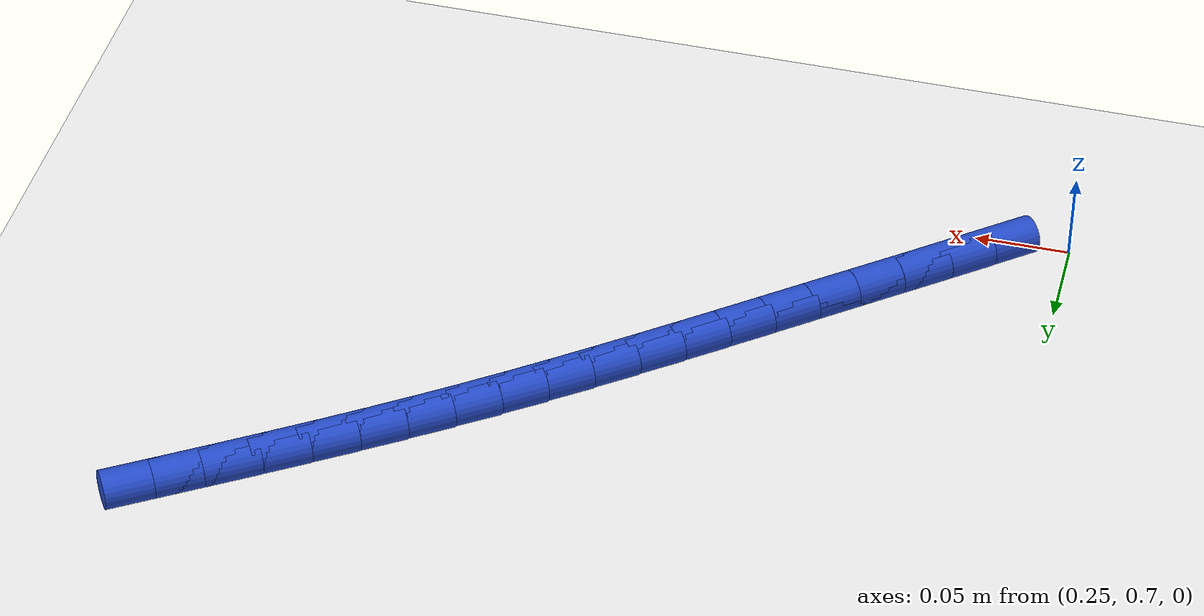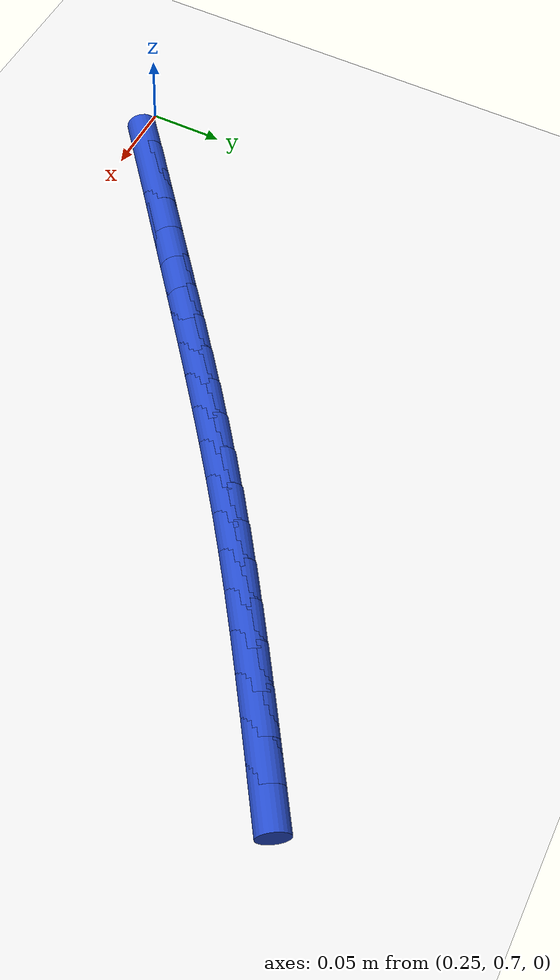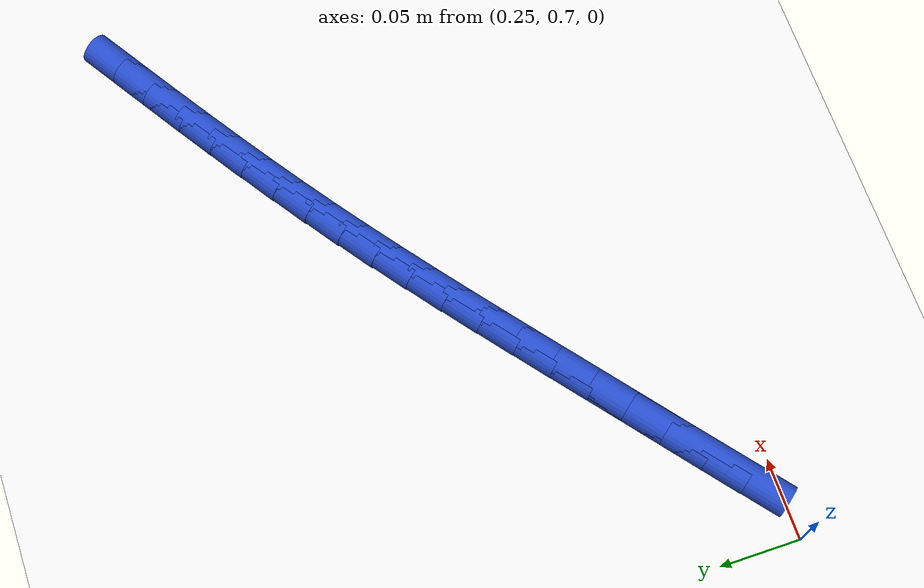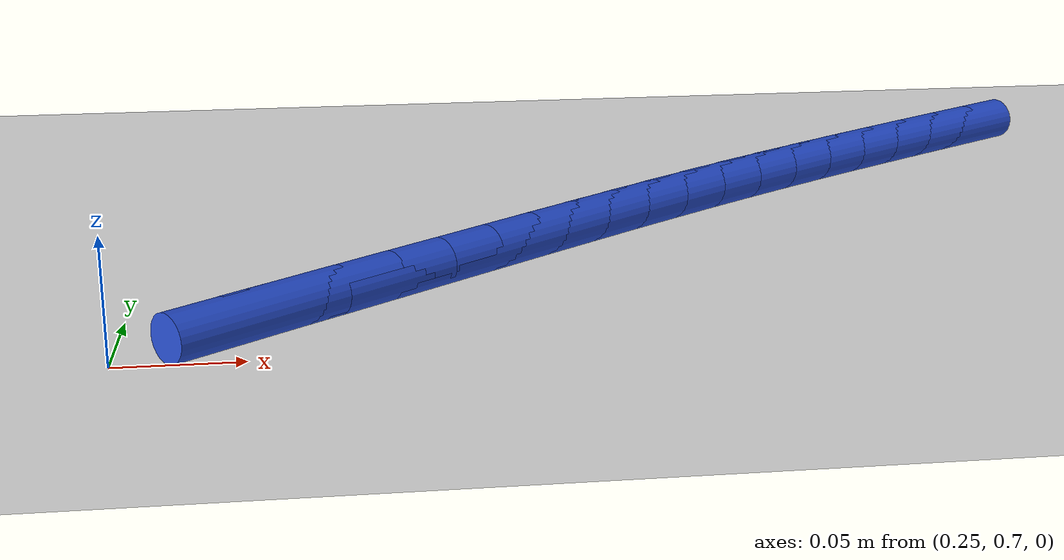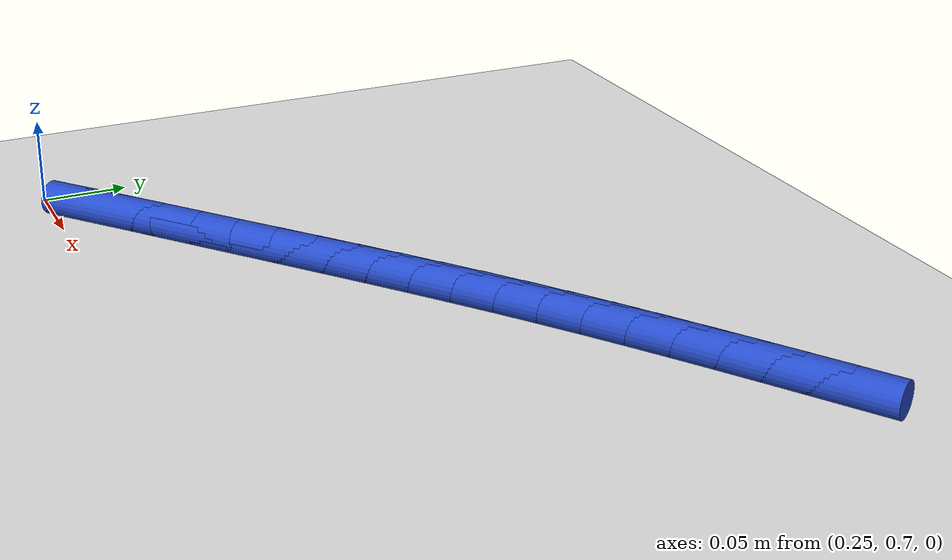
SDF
<sdf version="1.6">
 <world name="default">
  <model name="ground_plane">
   <static>1</static>
   <link name="link">
    <collision name="collision">
     <geometry><plane><normal>0 0 1</normal><size>100 100</size></plane></geometry>
     <surface><friction><ode><mu>100</mu><mu2>50</mu2></ode></friction></surface>
    </collision>
    <visual name="visual">
     <cast_shadows>0</cast_shadows>
     <geometry><plane><normal>0 0 1</normal><size>100 100</size></plane></geometry>
     <material>
      <script><uri>file://media/materials/scripts/gazebo.material</uri><name>Gazebo/WhiteGlow</name></script>
     </material>
    </visual>
   </link>
  </model>
  <model name="line">
   <link name="link_32">
    <pose>0.3021349911026723 0.7257497273025703 0.01 0 1.57 0.6793343324621144</pose>
    <collision name="collision">
     <geometry><cylinder><radius>0.01</radius><length>0.08</length></cylinder></geometry>
    </collision>
    <visual name="visual">
     <material>
      <script><name>Gazebo/Blue</name><uri>file://media/materials/scripts/gazebo.material</uri></script>
     </material>
     <geometry><cylinder><radius>0.01</radius><length>0.08</length></cylinder></geometry>
    </visual>
   </link>
   <link name="link_33">
    <pose>0.322308428355889 0.7420410084169826 0.01 0 1.57 0.6737757963437292</pose>
    <collision name="collision">
     <geometry><cylinder><radius>0.01</radius><length>0.08</length></cylinder></geometry>
    </collision>
    <visual name="visual">
     <material>
      <script><name>Gazebo/Blue</name><uri>file://media/materials/scripts/gazebo.material</uri></script>
     </material>
     <geometry><cylinder><radius>0.01</radius><length>0.08</length></cylinder></geometry>
    </visual>
   </link>
   <link name="link_34">
    <pose>0.34256382908145405 0.7582132926801137 0.01 0 1.57 0.672583016137868</pose>
    <collision name="collision">
     <geometry><cylinder><radius>0.01</radius><length>0.08</length></cylinder></geometry>
    </collision>
    <visual name="visual">
     <material>
      <script><name>Gazebo/Blue</name><uri>file://media/materials/scripts/gazebo.material</uri></script>
     </material>
     <geometry><cylinder><radius>0.01</radius><length>0.08</length></cylinder></geometry>
    </visual>
   </link>
   <link name="link_35">
    <pose>0.3627971862684209 0.7743284958955404 0.01 0 1.57 0.6737347139427622</pose>
    <collision name="collision">
     <geometry><cylinder><radius>0.01</radius><length>0.08</length></cylinder></geometry>
    </collision>
    <visual name="visual">
     <material>
      <script><name>Gazebo/Blue</name><uri>file://media/materials/scripts/gazebo.material</uri></script>
     </material>
     <geometry><cylinder><radius>0.01</radius><length>0.08</length></cylinder></geometry>
    </visual>
   </link>
   <link name="link_36">
    <pose>0.38294680408860193 0.7904149656964928 0.01 0 1.57 0.6734707279106257</pose>
    <collision name="collision">
     <geometry><cylinder><radius>0.01</radius><length>0.08</length></cylinder></geometry>
    </collision>
    <visual name="visual">
     <material>
      <script><name>Gazebo/Blue</name><uri>file://media/materials/scripts/gazebo.material</uri></script>
     </material>
     <geometry><cylinder><radius>0.01</radius><length>0.08</length></cylinder></geometry>
    </visual>
   </link>
   <link name="link_37">
    <pose>0.4030291421284044 0.806439044021731 0.01 0 1.57 0.6713654756858886</pose>
    <collision name="collision">
     <geometry><cylinder><radius>0.01</radius><length>0.08</length></cylinder></geometry>
    </collision>
    <visual name="visual">
     <material>
      <script><name>Gazebo/Blue</name><uri>file://media/materials/scripts/gazebo.material</uri></script>
     </material>
     <geometry><cylinder><radius>0.01</radius><length>0.08</length></cylinder></geometry>
    </visual>
   </link>
   <link name="link_38">
    <pose>0.42306910291835326 0.8223603744818692 0.01 0 1.57 0.6673965449942747</pose>
    <collision name="collision">
     <geometry><cylinder><radius>0.01</radius><length>0.08</length></cylinder></geometry>
    </collision>
    <visual name="visual">
     <material>
      <script><name>Gazebo/Blue</name><uri>file://media/materials/scripts/gazebo.material</uri></script>
     </material>
     <geometry><cylinder><radius>0.01</radius><length>0.08</length></cylinder></geometry>
    </visual>
   </link>
   <link name="link_39">
    <pose>0.44309158898897316 0.838138600687521 0.01 0 1.57 0.6615389418892058</pose>
    <collision name="collision">
     <geometry><cylinder><radius>0.01</radius><length>0.08</length></cylinder></geometry>
    </collision>
    <visual name="visual">
     <material>
      <script><name>Gazebo/Blue</name><uri>file://media/materials/scripts/gazebo.material</uri></script>
     </material>
     <geometry><cylinder><radius>0.01</radius><length>0.08</length></cylinder></geometry>
    </visual>
   </link>
   <link name="link_40">
    <pose>0.4631215028707886 0.8537333662493005 0.01 0 1.57 0.653765410674044</pose>
    <collision name="collision">
     <geometry><cylinder><radius>0.01</radius><length>0.08</length></cylinder></geometry>
    </collision>
    <visual name="visual">
     <material>
      <script><name>Gazebo/Blue</name><uri>file://media/materials/scripts/gazebo.material</uri></script>
     </material>
     <geometry><cylinder><radius>0.01</radius><length>0.08</length></cylinder></geometry>
    </visual>
   </link>
   <link name="link_41">
    <pose>0.483183747094325 0.869104314777822 0.01 0 1.57 0.6440469759912804</pose>
    <collision name="collision">
     <geometry><cylinder><radius>0.01</radius><length>0.08</length></cylinder></geometry>
    </collision>
    <visual name="visual">
     <material>
      <script><name>Gazebo/Blue</name><uri>file://media/materials/scripts/gazebo.material</uri></script>
     </material>
     <geometry><cylinder><radius>0.01</radius><length>0.08</length></cylinder></geometry>
    </visual>
   </link>
   <link name="link_42">
    <pose>0.5033032241901063 0.8842110898836989 0.01 0 1.57 0.6323537324862533</pose>
    <collision name="collision">
     <geometry><cylinder><radius>0.01</radius><length>0.08</length></cylinder></geometry>
    </collision>
    <visual name="visual">
     <material>
      <script><name>Gazebo/Blue</name><uri>file://media/materials/scripts/gazebo.material</uri></script>
     </material>
     <geometry><cylinder><radius>0.01</radius><length>0.08</length></cylinder></geometry>
    </visual>
   </link>
   <link name="link_43">
    <pose>0.5235048366886577 0.8990133351775456 0.01 0 1.57 0.6189586472472137</pose>
    <collision name="collision">
     <geometry><cylinder><radius>0.01</radius><length>0.08</length></cylinder></geometry>
    </collision>
    <visual name="visual">
     <material>
      <script><name>Gazebo/Blue</name><uri>file://media/materials/scripts/gazebo.material</uri></script>
     </material>
     <geometry><cylinder><radius>0.01</radius><length>0.08</length></cylinder></geometry>
    </visual>
   </link>
   <link name="link_44">
    <pose>0.5438129419304345 0.9134795718546239 0.01 0 1.57 0.6062135328782154</pose>
    <collision name="collision">
     <geometry><cylinder><radius>0.01</radius><length>0.08</length></cylinder></geometry>
    </collision>
    <visual name="visual">
     <material>
      <script><name>Gazebo/Blue</name><uri>file://media/materials/scripts/gazebo.material</uri></script>
     </material>
     <geometry><cylinder><radius>0.01</radius><length>0.08</length></cylinder></geometry>
    </visual>
   </link>
   <link name="link_45">
    <pose>0.5642476838814152 0.9276469294555973 0.01 0 1.57 0.5952959513549528</pose>
    <collision name="collision">
     <geometry><cylinder><radius>0.01</radius><length>0.08</length></cylinder></geometry>
    </collision>
    <visual name="visual">
     <material>
      <script><name>Gazebo/Blue</name><uri>file://media/materials/scripts/gazebo.material</uri></script>
     </material>
     <geometry><cylinder><radius>0.01</radius><length>0.08</length></cylinder></geometry>
    </visual>
   </link>
   <link name="link_46">
    <pose>0.5848272435452601 0.9415845013537882 0.01 0 1.57 0.5862882250345604</pose>
    <collision name="collision">
     <geometry><cylinder><radius>0.01</radius><length>0.08</length></cylinder></geometry>
    </collision>
    <visual name="visual">
     <material>
      <script><name>Gazebo/Blue</name><uri>file://media/materials/scripts/gazebo.material</uri></script>
     </material>
     <geometry><cylinder><radius>0.01</radius><length>0.08</length></cylinder></geometry>
    </visual>
   </link>
   <link name="link_47">
    <pose>0.6055697909525449 0.9553615596023771 0.01 0 1.57 0.5792393897039184</pose>
    <collision name="collision">
     <geometry><cylinder><radius>0.01</radius><length>0.08</length></cylinder></geometry>
    </collision>
    <visual name="visual">
     <material>
      <script><name>Gazebo/Blue</name><uri>file://media/materials/scripts/gazebo.material</uri></script>
     </material>
     <geometry><cylinder><radius>0.01</radius><length>0.08</length></cylinder></geometry>
    </visual>
   </link>
   <link name="link_48">
    <pose>0.626493496133846 0.9690473762545446 0.01 0 1.57 0.5741714128026425</pose>
    <collision name="collision">
     <geometry><cylinder><radius>0.01</radius><length>0.08</length></cylinder></geometry>
    </collision>
    <visual name="visual">
     <material>
      <script><name>Gazebo/Blue</name><uri>file://media/materials/scripts/gazebo.material</uri></script>
     </material>
     <geometry><cylinder><radius>0.01</radius><length>0.08</length></cylinder></geometry>
    </visual>
   </link>
   <link name="link_49">
    <pose>0.6476165291197394 0.9827112233634712 0.01 0 1.57 0.5710800401883386</pose>
    <collision name="collision">
     <geometry><cylinder><radius>0.01</radius><length>0.08</length></cylinder></geometry>
    </collision>
    <visual name="visual">
     <material>
      <script><name>Gazebo/Blue</name><uri>file://media/materials/scripts/gazebo.material</uri></script>
     </material>
     <geometry><cylinder><radius>0.01</radius><length>0.08</length></cylinder></geometry>
    </visual>
   </link>
  </model>
 </world>
</sdf>
